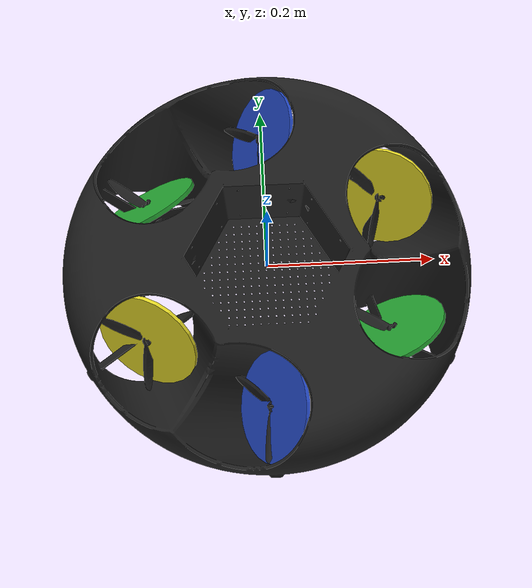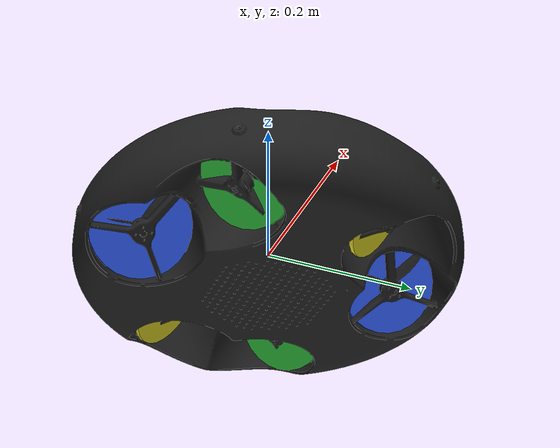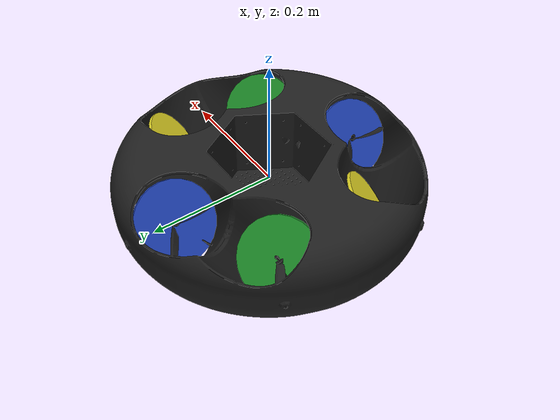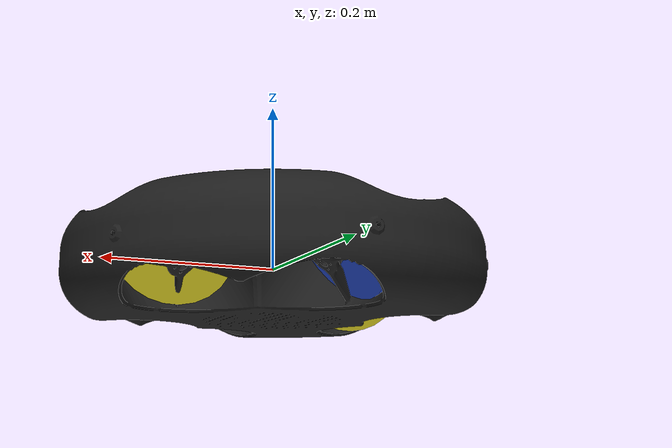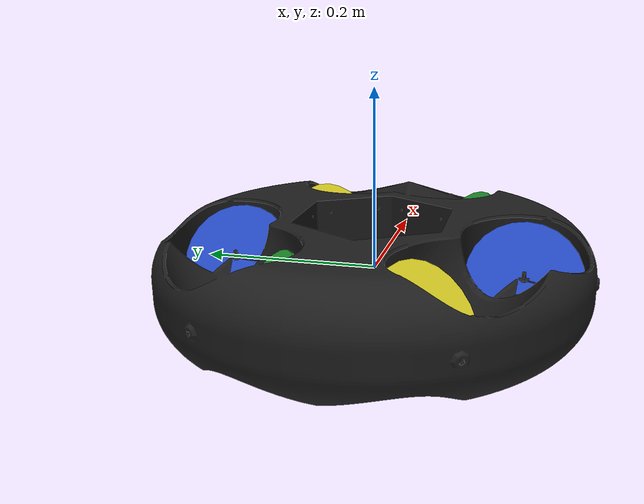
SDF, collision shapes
<?xml version="1.0" encoding="UTF-8"?>
<sdf version='1.9'>
  <model name='space_cobot'>
    <self_collide>false</self_collide>
    <static>false</static>
    <link name='base_link'>
      <pose>0 0 0 0 -0 0</pose>
      <inertial>
        <pose>0 0 0 0 -0 0</pose>
        <mass>3.4</mass>
        <inertia>
          <ixx>0.085225</ixx>
          <ixy>0</ixy>
          <ixz>0</ixz>
          <iyy>0.085225</iyy>
          <iyz>0</iyz>
          <izz>0.085225</izz>
        </inertia>
      </inertial>
      <collision name='base_link_inertia_collision'>
        <pose>0 0 0 0 -0 0</pose>
        <geometry>
          <mesh>
            <scale>1.0 1.0 1.0</scale>
            <uri>model://space_cobot/meshes/cobot.dae</uri>
          </mesh>
        </geometry>
        <surface>
          <contact>
            <ode>
              <min_depth>0.001</min_depth>
              <max_vel>0</max_vel>
            </ode>
          </contact>
          <friction>
            <ode/>
          </friction>
        </surface>
      </collision>
      <visual name='base_link_inertia_visual'>
        <pose>0.0 0.0 0.0 0 -0 0</pose>
        <geometry>
          <mesh>
            <scale>1.0 1.0 1.0</scale>
            <uri>model://space_cobot/meshes/cobot.dae</uri>
          </mesh>
        </geometry>
        <material>
          <script>
            <name>Gazebo/Black</name>
            <uri>file://media/materials/scripts/gazebo.material</uri>
          </script>
        </material>
      </visual>
      <gravity>true</gravity>
      <velocity_decay/>
      <sensor name="air_pressure_sensor" type="air_pressure">
        <always_on>1</always_on>
        <update_rate>50</update_rate>
        <air_pressure>
          <pressure>
            <noise type="gaussian">
              <mean>0</mean>
              <stddev>0.01</stddev>
            </noise>
          </pressure>
        </air_pressure>
      </sensor>
      <sensor name="imu_sensor" type="imu">
        <always_on>1</always_on>
        <update_rate>250</update_rate>
        <imu>
          <angular_velocity>
            <x>
              <noise type="gaussian">
                <mean>0</mean>
                <stddev>0.00018665</stddev>
                <dynamic_bias_stddev>3.8785e-05</dynamic_bias_stddev>
                <dynamic_bias_correlation_time>1000</dynamic_bias_correlation_time>
              </noise>
            </x>
            <y>
              <noise type="gaussian">
                <mean>0</mean>
                <stddev>0.00018665</stddev>
                <dynamic_bias_stddev>3.8785e-05</dynamic_bias_stddev>
                <dynamic_bias_correlation_time>1000</dynamic_bias_correlation_time>
              </noise>
            </y>
            <z>
              <noise type="gaussian">
                <mean>0</mean>
                <stddev>0.00018665</stddev>
                <dynamic_bias_stddev>3.8785e-05</dynamic_bias_stddev>
                <dynamic_bias_correlation_time>1000</dynamic_bias_correlation_time>
              </noise>
            </z>
          </angular_velocity>
          <linear_acceleration>
            <x>
              <noise type="gaussian">
                <mean>0</mean>
                <stddev>0.00186</stddev>
                <dynamic_bias_stddev>0.006</dynamic_bias_stddev>
                <dynamic_bias_correlation_time>300</dynamic_bias_correlation_time>
              </noise>
            </x>
            <y>
              <noise type="gaussian">
                <mean>0</mean>
                <stddev>0.00186</stddev>
                <dynamic_bias_stddev>0.006</dynamic_bias_stddev>
                <dynamic_bias_correlation_time>300</dynamic_bias_correlation_time>
              </noise>
            </y>
            <z>
              <noise type="gaussian">
                <mean>0</mean>
                <stddev>0.00186</stddev>
                <dynamic_bias_stddev>0.006</dynamic_bias_stddev>
                <dynamic_bias_correlation_time>300</dynamic_bias_correlation_time>
              </noise>
            </z>
          </linear_acceleration>
        </imu>
      </sensor>
      <sensor name="navsat_sensor" type="navsat">
        <always_on>1</always_on>
        <update_rate>30</update_rate>
      </sensor>
    </link>

    <!-- Rotor 0 and Rotor 4 form a pair -->
    <link name='rotor_0'>
      <pose>0.0 -0.1655 0.0 0.0 -0.958 0.0 </pose>
      <inertial>
        <pose>0 0 0 0 -0 0</pose>
        <mass>0.005</mass>
        <inertia>
          <ixx>9.75e-07</ixx>
          <ixy>0</ixy>
          <ixz>0</ixz>
          <iyy>0.000273104</iyy>
          <iyz>0</iyz>
          <izz>0.000274004</izz>
        </inertia>
      </inertial>
      <collision name='rotor_0_collision'>
        <pose>0 0 0 0 -0 0</pose>
        <geometry>
          <cylinder>
            <length>0.005</length>
            <radius>0.064</radius>
          </cylinder>
        </geometry>
        <surface>
          <contact>
            <ode/>
          </contact>
          <friction>
            <ode/>
          </friction>
        </surface>
      </collision>
      <visual name='rotor_0_visual'>
        <pose>0 0 0 0 -0 0</pose>
        <geometry>
          <mesh>
            <scale>0.45 0.45 0.45</scale>
            <uri>model://omnicopter/meshes/iris_prop_ccw.dae</uri>
          </mesh>
        </geometry>
        <material>
          <script>
            <name>Gazebo/Blue</name>
            <uri>file://media/materials/scripts/gazebo.material</uri>
          </script>
        </material>
      </visual>
      <gravity>1</gravity>
      <velocity_decay/>
    </link>
    <joint name='rotor_0_joint' type='revolute'>
      <child>rotor_0</child>
      <parent>base_link</parent>
      <axis>
        <limit>
          <lower>-1e+16</lower>
          <upper>1e+16</upper>
        </limit>
        <dynamics>
          <spring_reference>0</spring_reference>
          <spring_stiffness>0</spring_stiffness>
        </dynamics>
      </axis>
    </joint>
    <plugin filename="gz-sim-multicopter-motor-model-system" name="gz::sim::systems::MulticopterMotorModel">
      <jointName>rotor_0_joint</jointName>
      <linkName>rotor_0</linkName>
      <turningDirection>ccw</turningDirection>
      <timeConstantUp>0.0125</timeConstantUp>
      <timeConstantDown>0.025</timeConstantDown>
      <maxRotVelocity>1100.0</maxRotVelocity>
      <motorConstant>2.50972e-05</motorConstant>
      <momentConstant>0.06</momentConstant>
      <commandSubTopic>command/motor_speed</commandSubTopic>
      <motorNumber>0</motorNumber>
      <rotorDragCoefficient>0.000175</rotorDragCoefficient>
      <rollingMomentCoefficient>1e-06</rollingMomentCoefficient>
      <rotorVelocitySlowdownSim>10</rotorVelocitySlowdownSim>
      <motorType>velocity</motorType>
    </plugin>
    <link name='rotor_3'>
      <pose>0.0 0.1655 0.0 0.0 2.1817 0.0</pose>
      <inertial>
        <pose>0 0 0 0 -0 0</pose>
        <mass>0.005</mass>
        <inertia>
          <ixx>9.75e-07</ixx>
          <ixy>0</ixy>
          <ixz>0</ixz>
          <iyy>0.000273104</iyy>
          <iyz>0</iyz>
          <izz>0.000274004</izz>
        </inertia>
      </inertial>
      <collision name='rotor_3_collision'>
        <pose>0 0 0 0 -0 0</pose>
        <geometry>
          <cylinder>
            <length>0.005</length>
            <radius>0.064</radius>
          </cylinder>
        </geometry>
        <surface>
          <contact>
            <ode/>
          </contact>
          <friction>
            <ode/>
          </friction>
        </surface>
      </collision>
      <visual name='rotor_3_visual'>
        <pose>0 0 0 0 -0 0</pose>
        <geometry>
          <mesh>
            <scale>0.45 0.45 0.45</scale>
            <uri>model://omnicopter/meshes/iris_prop_ccw.dae</uri>
          </mesh>
        </geometry>
        <material>
          <script>
            <name>Gazebo/Blue</name>
            <uri>file://media/materials/scripts/gazebo.material</uri>
          </script>
        </material>
      </visual>
      <gravity>1</gravity>
      <velocity_decay/>
    </link>
    <joint name='rotor_3_joint' type='revolute'>
      <child>rotor_3</child>
      <parent>base_link</parent>
      <axis>
        <limit>
          <lower>-1e+16</lower>
          <upper>1e+16</upper>
        </limit>
        <dynamics>
          <spring_reference>0</spring_reference>
          <spring_stiffness>0</spring_stiffness>
        </dynamics>
      </axis>
    </joint>
    <plugin filename="gz-sim-multicopter-motor-model-system" name="gz::sim::systems::MulticopterMotorModel">
      <jointName>rotor_3_joint</jointName>
      <linkName>rotor_3</linkName>
      <turningDirection>ccw</turningDirection>
      <timeConstantUp>0.0125</timeConstantUp>
      <timeConstantDown>0.025</timeConstantDown>
      <maxRotVelocity>1100.0</maxRotVelocity>
      <motorConstant>2.50972e-05</motorConstant>
      <momentConstant>0.06</momentConstant>
      <commandSubTopic>command/motor_speed</commandSubTopic>
      <motorNumber>0</motorNumber>
      <rotorDragCoefficient>0.000175</rotorDragCoefficient>
      <rollingMomentCoefficient>1e-06</rollingMomentCoefficient>
      <rotorVelocitySlowdownSim>10</rotorVelocitySlowdownSim>
      <motorType>velocity</motorType>
    </plugin>

    <!-- Rotor 1 and Rotor 5 form a pair -->
    <link name='rotor_1'>
      <pose>0.1433 -0.0827 0.0 0.0 -0.9599 -1.0472</pose>
      <inertial>
        <pose>0 0 0 0 -0 0</pose>
        <mass>0.005</mass>
        <inertia>
          <ixx>9.75e-07</ixx>
          <ixy>0</ixy>
          <ixz>0</ixz>
          <iyy>0.000273104</iyy>
          <iyz>0</iyz>
          <izz>0.000274004</izz>
        </inertia>
      </inertial>
      <collision name='rotor_1_collision'>
        <pose>0 0 0 0 -0 0</pose>
        <geometry>
          <cylinder>
            <length>0.005</length>
            <radius>0.064</radius>
          </cylinder>
        </geometry>
        <surface>
          <contact>
            <ode/>
          </contact>
          <friction>
            <ode/>
          </friction>
        </surface>
      </collision>
      <visual name='rotor_1_visual'>
        <pose>0 0 0 0 -0 0</pose>
        <geometry>
          <mesh>
            <scale>0.45 0.45 0.45</scale>
            <uri>model://omnicopter/meshes/iris_prop_ccw.dae</uri>
          </mesh>
        </geometry>
        <material>
          <script>
            <name>Gazebo/Green</name>
            <uri>file://media/materials/scripts/gazebo.material</uri>
          </script>
        </material>
      </visual>
      <gravity>1</gravity>
      <velocity_decay/>
    </link>
    <joint name='rotor_1_joint' type='revolute'>
      <child>rotor_1</child>
      <parent>base_link</parent>
      <axis>
        <limit>
          <lower>-1e+16</lower>
          <upper>1e+16</upper>
        </limit>
        <dynamics>
          <spring_reference>0</spring_reference>
          <spring_stiffness>0</spring_stiffness>
        </dynamics>
      </axis>
    </joint>
    <plugin filename="gz-sim-multicopter-motor-model-system" name="gz::sim::systems::MulticopterMotorModel">
      <jointName>rotor_1_joint</jointName>
      <linkName>rotor_1</linkName>
      <turningDirection>ccw</turningDirection>
      <timeConstantUp>0.0125</timeConstantUp>
      <timeConstantDown>0.025</timeConstantDown>
      <maxRotVelocity>1100.0</maxRotVelocity>
      <motorConstant>2.50972e-05</motorConstant>
      <momentConstant>0.06</momentConstant>
      <commandSubTopic>command/motor_speed</commandSubTopic>
      <motorNumber>0</motorNumber>
      <rotorDragCoefficient>0.000175</rotorDragCoefficient>
      <rollingMomentCoefficient>1e-06</rollingMomentCoefficient>
      <rotorVelocitySlowdownSim>10</rotorVelocitySlowdownSim>
      <motorType>velocity</motorType>
    </plugin>
    <link name='rotor_4'>
      <pose>-0.1433 0.0827 0.0 0.0 0.9599 2.0944</pose>
      <inertial>
        <pose>0 0 0 0 -0 0</pose>
        <mass>0.005</mass>
        <inertia>
          <ixx>9.75e-07</ixx>
          <ixy>0</ixy>
          <ixz>0</ixz>
          <iyy>0.000273104</iyy>
          <iyz>0</iyz>
          <izz>0.000274004</izz>
        </inertia>
      </inertial>
      <collision name='rotor_4_collision'>
        <pose>0 0 0 0 -0 0</pose>
        <geometry>
          <cylinder>
            <length>0.005</length>
            <radius>0.064</radius>
          </cylinder>
        </geometry>
        <surface>
          <contact>
            <ode/>
          </contact>
          <friction>
            <ode/>
          </friction>
        </surface>
      </collision>
      <visual name='rotor_4_visual'>
        <pose>0 0 0 0 -0 0</pose>
        <geometry>
          <mesh>
            <scale>0.45 0.45 0.45</scale>
            <uri>model://omnicopter/meshes/iris_prop_ccw.dae</uri>
          </mesh>
        </geometry>
        <material>
          <script>
            <name>Gazebo/Green</name>
            <uri>file://media/materials/scripts/gazebo.material</uri>
          </script>
        </material>
      </visual>
      <gravity>1</gravity>
      <velocity_decay/>
    </link>
    <joint name='rotor_4_joint' type='revolute'>
      <child>rotor_4</child>
      <parent>base_link</parent>
      <axis>
        <limit>
          <lower>-1e+16</lower>
          <upper>1e+16</upper>
        </limit>
        <dynamics>
          <spring_reference>0</spring_reference>
          <spring_stiffness>0</spring_stiffness>
        </dynamics>
      </axis>
    </joint>
    <plugin filename="gz-sim-multicopter-motor-model-system" name="gz::sim::systems::MulticopterMotorModel">
      <jointName>rotor_4_joint</jointName>
      <linkName>rotor_4</linkName>
      <turningDirection>ccw</turningDirection>
      <timeConstantUp>0.0125</timeConstantUp>
      <timeConstantDown>0.025</timeConstantDown>
      <maxRotVelocity>1100.0</maxRotVelocity>
      <motorConstant>2.50972e-05</motorConstant>
      <momentConstant>0.06</momentConstant>
      <commandSubTopic>command/motor_speed</commandSubTopic>
      <motorNumber>0</motorNumber>
      <rotorDragCoefficient>0.000175</rotorDragCoefficient>
      <rollingMomentCoefficient>1e-06</rollingMomentCoefficient>
      <rotorVelocitySlowdownSim>10</rotorVelocitySlowdownSim>
      <motorType>velocity</motorType>
    </plugin>
    <!-- Rotor 3 and Rotor 6 form a pair -->
    <link name='rotor_2'>
      <pose>0.1433 0.0827 0.0 0.0 0.9599 -2.0944</pose>
      <inertial>
        <pose>0 0 0 0 -0 0</pose>
        <mass>0.005</mass>
        <inertia>
          <ixx>9.75e-07</ixx>
          <ixy>0</ixy>
          <ixz>0</ixz>
          <iyy>0.000273104</iyy>
          <iyz>0</iyz>
          <izz>0.000274004</izz>
        </inertia>
      </inertial>
      <collision name='rotor_2_collision'>
        <pose>0 0 0 0 -0 0</pose>
        <geometry>
          <cylinder>
            <length>0.005</length>
            <radius>0.064</radius>
          </cylinder>
        </geometry>
        <surface>
          <contact>
            <ode/>
          </contact>
          <friction>
            <ode/>
          </friction>
        </surface>
      </collision>
      <visual name='rotor_2_visual'>
        <pose>0 0 0 0 -0 0</pose>
        <geometry>
          <mesh>
            <scale>0.45 0.45 0.45</scale>
            <uri>model://omnicopter/meshes/iris_prop_ccw.dae</uri>
          </mesh>
        </geometry>
        <material>
          <script>
            <name>Gazebo/Yellow</name>
            <uri>file://media/materials/scripts/gazebo.material</uri>
          </script>
        </material>
      </visual>
      <gravity>1</gravity>
      <velocity_decay/>
    </link>
    <joint name='rotor_2_joint' type='revolute'>
      <child>rotor_2</child>
      <parent>base_link</parent>
      <axis>
        <limit>
          <lower>-1e+16</lower>
          <upper>1e+16</upper>
        </limit>
        <dynamics>
          <spring_reference>0</spring_reference>
          <spring_stiffness>0</spring_stiffness>
        </dynamics>
      </axis>
    </joint>
    <plugin filename="gz-sim-multicopter-motor-model-system" name="gz::sim::systems::MulticopterMotorModel">
      <jointName>rotor_2_joint</jointName>
      <linkName>rotor_2</linkName>
      <turningDirection>ccw</turningDirection>
      <timeConstantUp>0.0125</timeConstantUp>
      <timeConstantDown>0.025</timeConstantDown>
      <maxRotVelocity>1100.0</maxRotVelocity>
      <motorConstant>2.50972e-05</motorConstant>
      <momentConstant>0.06</momentConstant>
      <commandSubTopic>command/motor_speed</commandSubTopic>
      <motorNumber>0</motorNumber>
      <rotorDragCoefficient>0.000175</rotorDragCoefficient>
      <rollingMomentCoefficient>1e-06</rollingMomentCoefficient>
      <rotorVelocitySlowdownSim>10</rotorVelocitySlowdownSim>
      <motorType>velocity</motorType>
    </plugin>
    <link name='rotor_5'>
      <pose>-0.1433 -0.0827 0.0 0.0 -0.9599 1.047</pose>
      <inertial>
        <pose>0 0 0 0 -0 0</pose>
        <mass>0.005</mass>
        <inertia>
          <ixx>9.75e-07</ixx>
          <ixy>0</ixy>
          <ixz>0</ixz>
          <iyy>0.000273104</iyy>
          <iyz>0</iyz>
          <izz>0.000274004</izz>
        </inertia>
      </inertial>
      <collision name='rotor_5_collision'>
        <pose>0 0 0 0 -0 0</pose>
        <geometry>
          <cylinder>
            <length>0.005</length>
            <radius>0.064</radius>
          </cylinder>
        </geometry>
        <surface>
          <contact>
            <ode/>
          </contact>
          <friction>
            <ode/>
          </friction>
        </surface>
      </collision>
      <visual name='rotor_5_visual'>
        <pose>0 0 0 0 -0 0</pose>
        <geometry>
          <mesh>
            <scale>0.45 0.45 0.45</scale>
            <uri>model://omnicopter/meshes/iris_prop_ccw.dae</uri>
          </mesh>
        </geometry>
        <material>
          <script>
            <name>Gazebo/Yellow</name>
            <uri>file://media/materials/scripts/gazebo.material</uri>
          </script>
        </material>
      </visual>
      <gravity>1</gravity>
      <velocity_decay/>
    </link>
    <joint name='rotor_5_joint' type='revolute'>
      <child>rotor_5</child>
      <parent>base_link</parent>
      <axis>
        <limit>
          <lower>-1e+16</lower>
          <upper>1e+16</upper>
        </limit>
        <dynamics>
          <spring_reference>0</spring_reference>
          <spring_stiffness>0</spring_stiffness>
        </dynamics>
      </axis>
    </joint>
    <plugin filename="gz-sim-multicopter-motor-model-system" name="gz::sim::systems::MulticopterMotorModel">
      <jointName>rotor_5_joint</jointName>
      <linkName>rotor_5</linkName>
      <turningDirection>ccw</turningDirection>
      <timeConstantUp>0.0125</timeConstantUp>
      <timeConstantDown>0.025</timeConstantDown>
      <maxRotVelocity>1100.0</maxRotVelocity>
      <motorConstant>2.50972e-05</motorConstant>
      <momentConstant>0.06</momentConstant>
      <commandSubTopic>command/motor_speed</commandSubTopic>
      <motorNumber>0</motorNumber>
      <rotorDragCoefficient>0.000175</rotorDragCoefficient>
      <rollingMomentCoefficient>1e-06</rollingMomentCoefficient>
      <rotorVelocitySlowdownSim>10</rotorVelocitySlowdownSim>
      <motorType>velocity</motorType>
    </plugin>

  </model>
</sdf>
